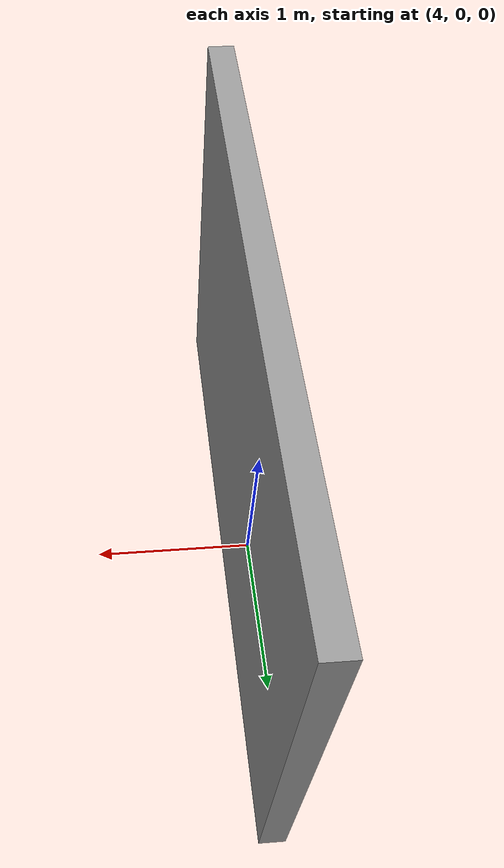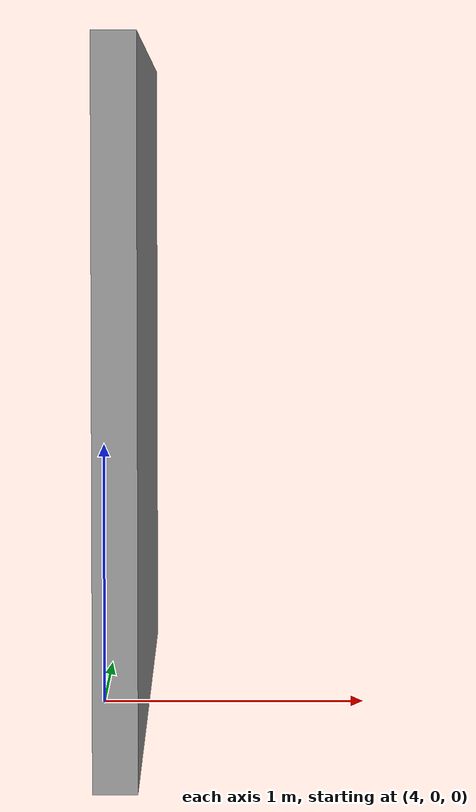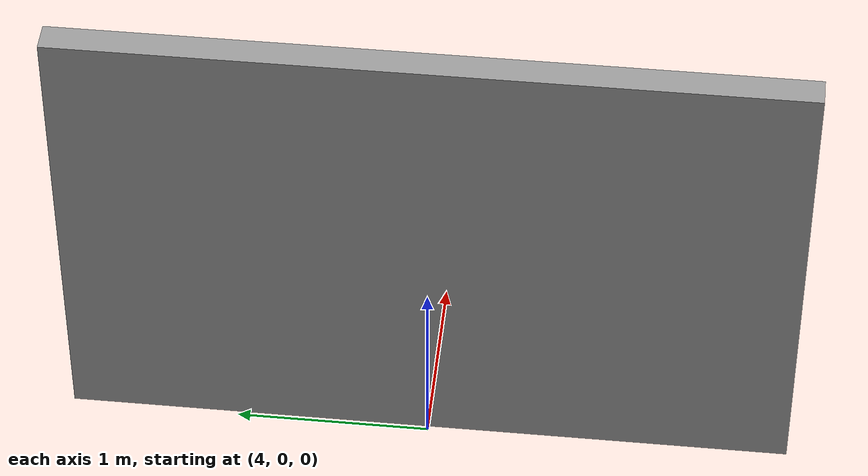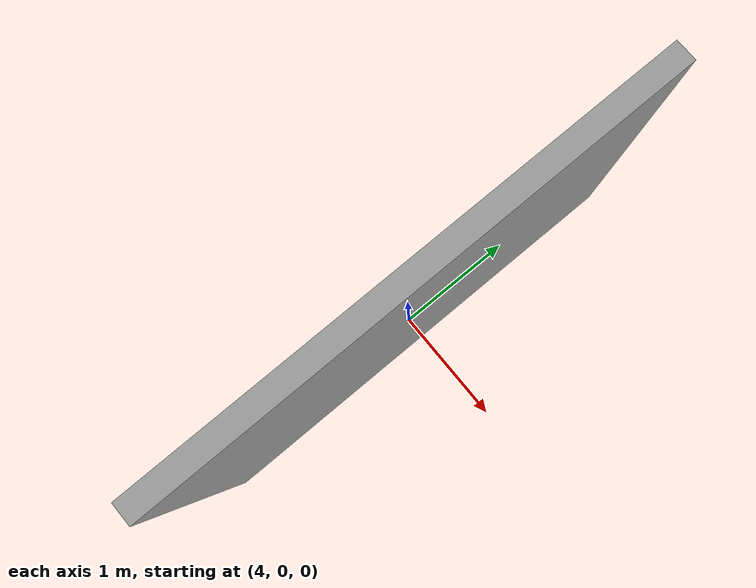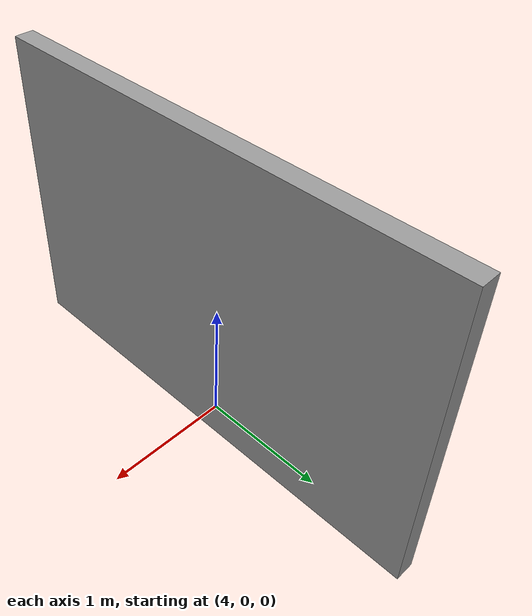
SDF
<?xml version='1.0'?>
<sdf version='1.7'>
  <model name='teste_parede'>
    <pose>1.5 0 0 0 -0 0</pose>
    <link name='Wall_2'>
      <collision name='Wall_2_Collision'>
        <geometry>
          <box>
            <size>3.75 0.15 2.5</size>
          </box>
        </geometry>
        <pose>0 0 1.25 0 -0 0</pose>
      </collision>
      <visual name='Wall_2_Visual'>
        <pose>0 0 1.25 0 -0 0</pose>
        <geometry>
          <box>
            <size>3.75 0.15 2.5</size>
          </box>
        </geometry>
        <material>
          <script>
            <uri>file://media/materials/scripts/gazebo.material</uri>
            <name>Gazebo/Grey</name>
          </script>
          <ambient>1 1 1 1</ambient>
        </material>
        <meta>
          <layer>0</layer>
        </meta>
      </visual>
      <pose>2.59773 0 0 0 -0 -1.5708</pose>
    </link>
    <static>1</static>
  </model>
</sdf>
